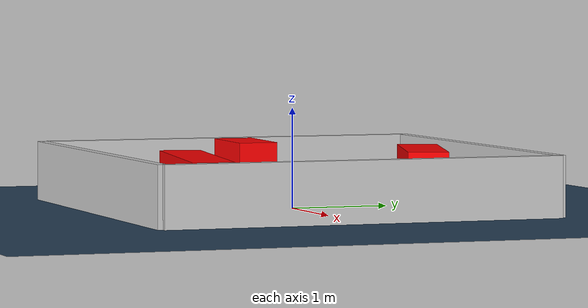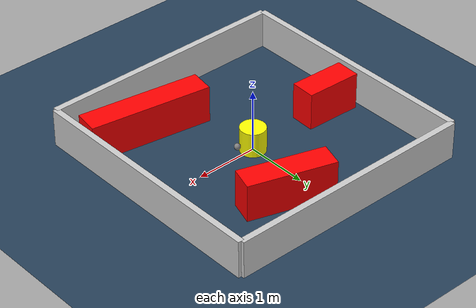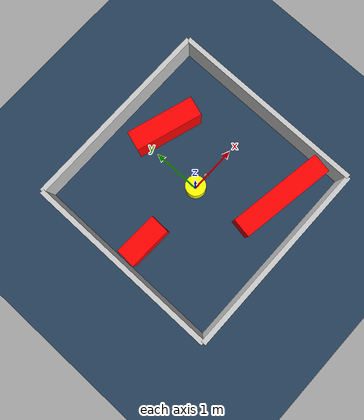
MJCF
<?xml version="1.0" ?>
<mujoco model="generated_environment">
  <option timestep="0.01" integrator="RK4" cone="elliptic"/>
  <default>
    <geom density="1"/>
  </default>
  <asset>
    <texture builtin="gradient" height="3072" rgb1="0.3 0.5 0.7" rgb2="0 0 0" type="skybox" width="512"/>
    <texture builtin="checker" height="300" mark="edge" markrgb="0.8 0.8 0.8" name="groundplane" rgb1="0.2 0.3 0.4" rgb2="0.1 0.2 0.3" type="2d" width="300"/>
    <material name="groundplane" reflectance="0.2" texrepeat="5 5" texture="groundplane" texuniform="true"/>
    <material name="robot" rgba="0.0 1.0 0.0 1"/>
  </asset>
  <worldbody>
    <light dir="0 0 -1" directional="true" pos="0 0 1.5"/>
    <geom condim="4" friction="1.0 0.005 0.001" material="groundplane" name="floor" size="0 0 0.05" type="plane"/>
    <body name="walls">
      <geom name="wall_1" condim="4" pos="-2.0 0.0 0.3" rgba="0.800000011920929 0.800000011920929 0.800000011920929 1.0" size="0.05 2.0 0.3" type="box"/>
      <geom name="wall_2" condim="4" pos="2.0 0.0 0.3" rgba="0.800000011920929 0.800000011920929 0.800000011920929 1.0" size="0.05 2.0 0.3" type="box"/>
      <geom name="wall_3" condim="4" pos="0.0 -2.0 0.3" rgba="0.800000011920929 0.800000011920929 0.800000011920929 1.0" size="2.0 0.05 0.3" type="box"/>
      <geom name="wall_4" condim="4" pos="0.0 2.0 0.3" rgba="0.800000011920929 0.800000011920929 0.800000011920929 1.0" size="2.0 0.05 0.3" type="box"/>
    </body>
    <body name="robot">
      <joint name="joint_x" type="slide" pos="0 0 0" axis="1 0 0"/>
      <joint name="joint_y" type="slide" pos="0 0 0" axis="0 1 0"/>
      <geom name="robot" type="sphere" pos="0.3 0.0 0.2" size="0.05" mass="5." friction="1.0 0.005 0.0001" condim="4" rgba="0.5 0.5 0.5 1.0"/>
      <site name="sensor_ball"/>
    </body>
    <body name="obstacle_movable_1">
      <geom name="obstacle_movable_1" condim="4" pos="0.0 0.0 0.2" euler="0 0 0.0" friction="1.0 0.005 0.001" rgba="1.0 1.0 0.0 1.0" size="0.2 0.2 0.0" type="cylinder" mass="0.1"/>
      <joint type="free"/>
    </body>
    <body name="obstacle_2_static">
      <geom name="obstacle_2_static" condim="4" pos="0.9162676757662735 -1.3127422555452517 0.3" euler="0 0 170.94809874458284" friction="1.0 0.005 0.001" rgba="1 0 0 1" size="0.9699481410748612 0.2 0.3" type="box"/>
    </body>
    <body name="obstacle_3_static">
      <geom name="obstacle_3_static" condim="4" pos="0.4602709143076087 1.208992122985751 0.3" euler="0 0 342.3416859994563" friction="1.0 0.005 0.001" rgba="1 0 0 1" size="0.6878643950550745 0.2 0.3" type="box"/>
    </body>
    <body name="obstacle_4_static">
      <geom name="obstacle_4_static" condim="4" pos="-1.4169272362702945 0.010253977167522521 0.3" euler="0 0 357.7506305098527" friction="1.0 0.005 0.001" rgba="1 0 0 1" size="0.44483641599838386 0.2 0.3" type="box"/>
    </body>
  </worldbody>
  <actuator>
    <motor name="actuator_x" joint="joint_x" gear="1" ctrlrange="-1 1"/>
    <motor name="actuator_y" joint="joint_y" gear="1" ctrlrange="-1 1"/>
  </actuator>
</mujoco>
